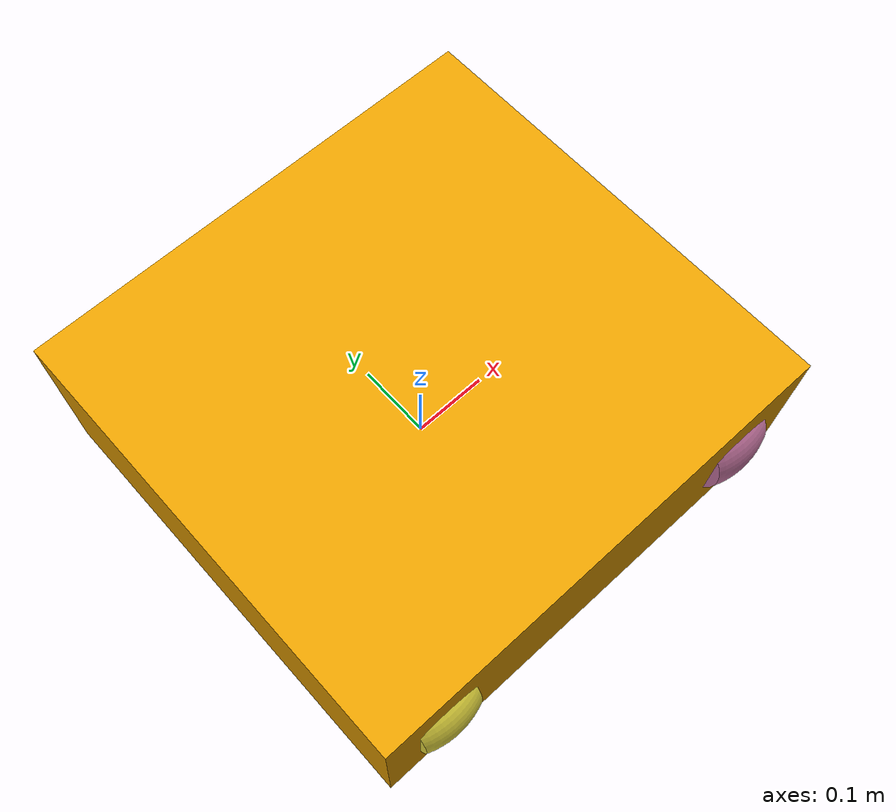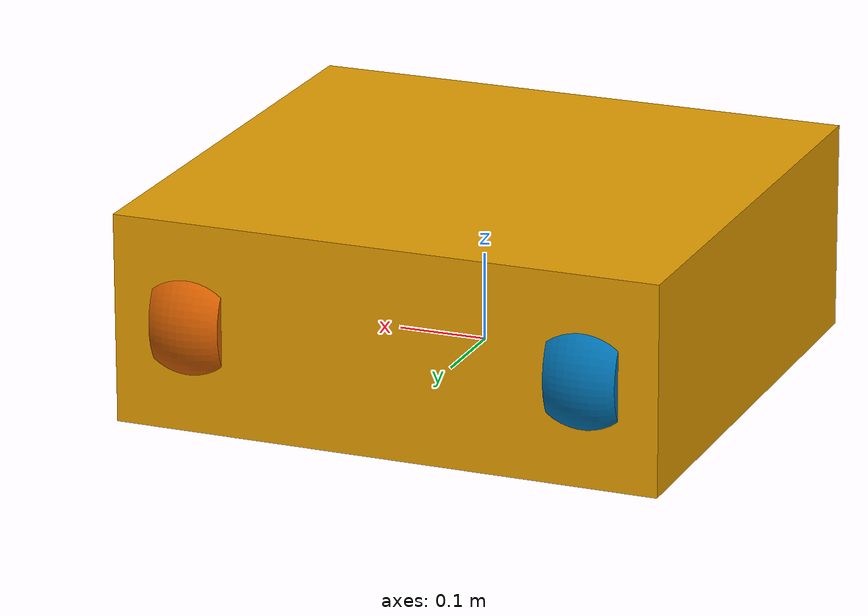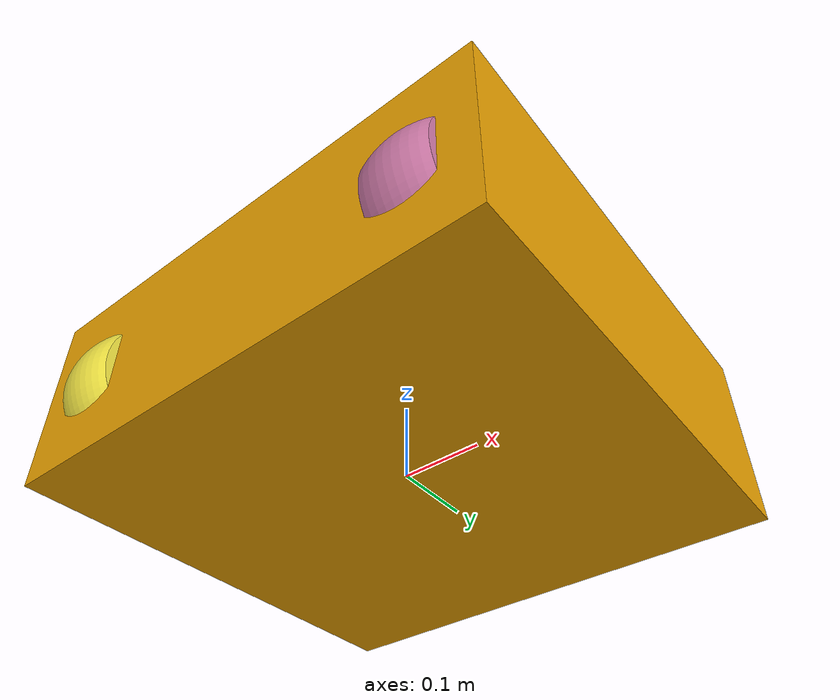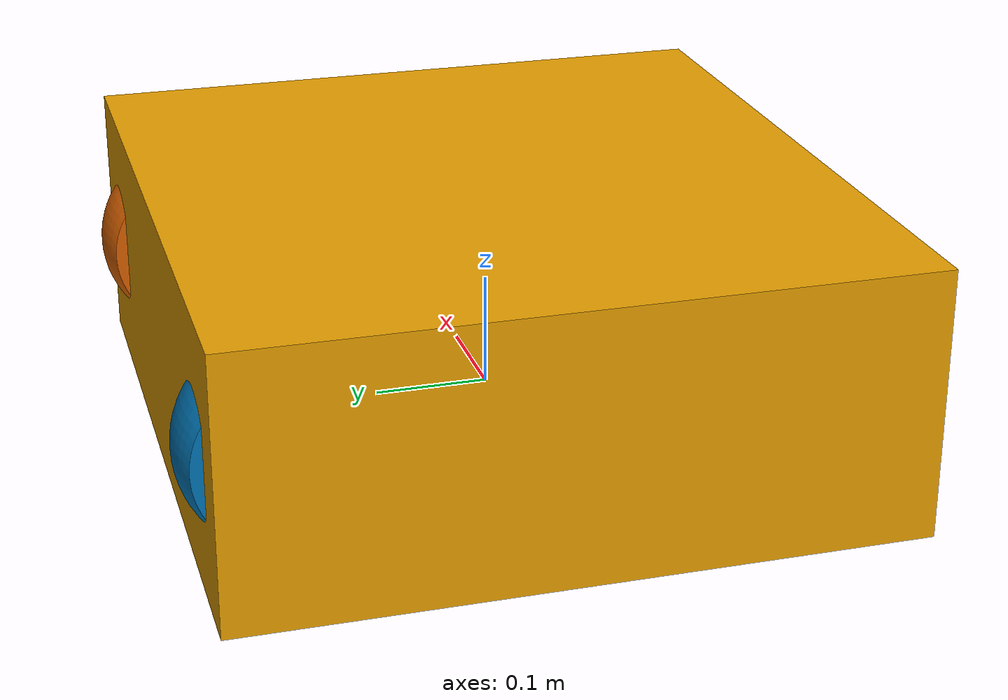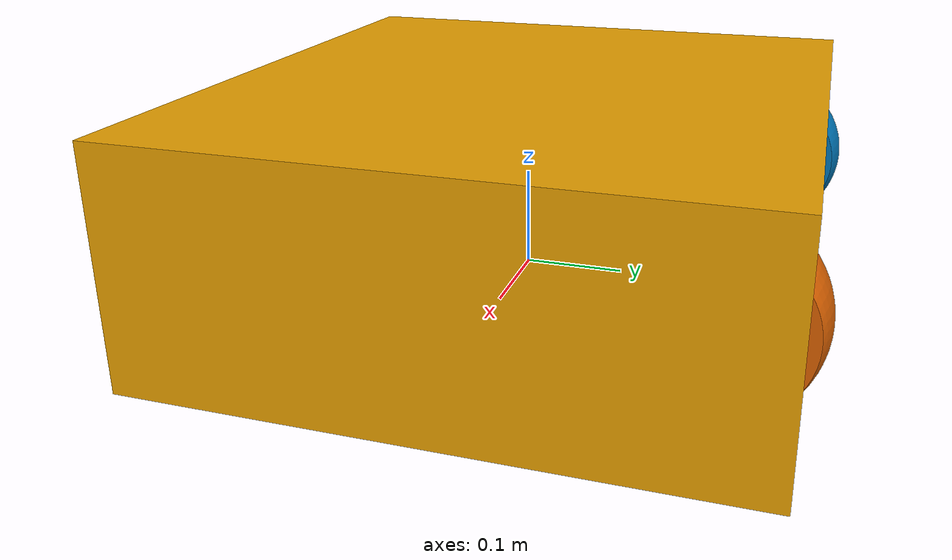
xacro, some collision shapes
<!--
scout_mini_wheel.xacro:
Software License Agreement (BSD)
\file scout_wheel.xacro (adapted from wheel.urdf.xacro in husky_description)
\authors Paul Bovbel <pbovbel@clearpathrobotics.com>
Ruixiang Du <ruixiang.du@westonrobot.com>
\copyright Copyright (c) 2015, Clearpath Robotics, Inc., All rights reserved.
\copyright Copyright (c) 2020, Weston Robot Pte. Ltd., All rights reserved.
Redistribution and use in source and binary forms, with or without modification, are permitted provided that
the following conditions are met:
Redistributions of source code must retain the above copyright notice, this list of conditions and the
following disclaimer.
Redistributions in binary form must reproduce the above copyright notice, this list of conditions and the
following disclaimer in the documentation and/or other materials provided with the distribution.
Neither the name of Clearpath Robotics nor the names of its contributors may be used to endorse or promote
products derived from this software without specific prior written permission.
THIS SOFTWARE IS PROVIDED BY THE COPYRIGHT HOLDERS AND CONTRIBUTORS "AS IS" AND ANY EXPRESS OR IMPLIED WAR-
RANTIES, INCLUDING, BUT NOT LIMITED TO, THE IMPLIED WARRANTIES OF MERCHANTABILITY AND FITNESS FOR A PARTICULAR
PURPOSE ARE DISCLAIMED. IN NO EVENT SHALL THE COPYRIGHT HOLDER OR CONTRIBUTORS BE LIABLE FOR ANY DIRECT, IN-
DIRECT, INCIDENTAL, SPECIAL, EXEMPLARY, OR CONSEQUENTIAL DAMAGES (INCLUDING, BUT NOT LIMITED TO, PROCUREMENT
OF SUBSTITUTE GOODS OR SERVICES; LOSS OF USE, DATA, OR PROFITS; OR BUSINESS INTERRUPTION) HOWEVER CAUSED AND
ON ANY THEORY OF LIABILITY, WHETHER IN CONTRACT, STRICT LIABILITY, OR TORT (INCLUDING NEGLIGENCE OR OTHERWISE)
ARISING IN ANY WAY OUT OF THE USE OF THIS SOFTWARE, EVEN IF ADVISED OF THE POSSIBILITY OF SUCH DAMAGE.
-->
<?xml version="1.0"?>

<robot name="scout_mini"
    xmlns:xacro="http://ros.org/wiki/xacro">

    <xacro:arg name="robot_namespace" default="/" />

    <xacro:include filename="$(find scout_description)/urdf/scout_mini_wheel.xacro" />

    <!-- Variables -->
    <xacro:property name="M_PI" value="3.14159" />

    <!-- Vehicle Geometries -->
    <xacro:property name="base_x_size" value="0.6200000" />
    <xacro:property name="base_y_size" value="0.585000" />
    <xacro:property name="base_z_size" value="0.235000" />

    <xacro:property name="wheelbase" value="0.38" />
    <xacro:property name="track" value="0.452598" />

    <xacro:property name="wheel_length" value="0.08" />
    <xacro:property name="wheel_radius" value="0.08" />

    <!-- Base link -->
    <link name="base_link">
        <visual>
            <origin xyz="0 0 ${wheel_radius}" rpy="0 0 0" />
            <geometry>
                <mesh filename="package://scout_description/meshes/scout_mini_base.obj" />
            </geometry>
        </visual>
        <collision>
            <origin xyz="0 0 ${wheel_radius}" rpy="0 0 0" />
            <geometry>
                <box size="${base_x_size} ${base_y_size} ${base_z_size}"/>
            </geometry>
        </collision>
    </link>

    <link name="base_footprint"/>

    <joint name="base_footprint_joint" type="fixed">
        <origin xyz="0 0 0" rpy="0 0 0" />
        <parent link="base_link" />
        <child link="base_footprint" />
    </joint>

    <link name="inertial_link">
        <inertial>
            <mass value="132.3898489950015" />
            <origin xyz="0 0 ${wheel_radius}" />
            <inertia ixx="0.185196122711036" ixy="4.30144213829512E-08" ixz="5.81037523686401E-08" iyy="0.364893736238929" iyz="-0.000386720198091934" izz="0.223868521722778" />
        </inertial>
    </link>

    <joint name="inertial_joint" type="fixed">
        <origin xyz="0 0 0" rpy="0 0 0" />
        <parent link="base_link" />
        <child link="inertial_link" />
    </joint>

    <!-- Scout wheel macros -->
    <!-- wheel labeled from 0 to 3, conter-clockwise, starting from front right wheel -->
    <!-- motor 1 and 2 (left side) are mechanically installed in a reversed direction -->
    <xacro:scout_mini_wheel wheel_prefix="rear_right">
        <origin xyz="${-wheelbase/2} ${-track/2} ${wheel_radius}" rpy="0 ${ M_PI/2} 0" />
    </xacro:scout_mini_wheel>
    <xacro:scout_mini_wheel wheel_prefix="front_right">
        <origin xyz="${-wheelbase/2} ${ track/2} ${wheel_radius}" rpy="0 ${ M_PI/2} 0" />
    </xacro:scout_mini_wheel>

    <xacro:scout_mini_wheel wheel_prefix="front_left">
        <origin xyz="${ wheelbase/2} ${ track/2} ${wheel_radius}" rpy="0 ${-M_PI/2} 0" />
    </xacro:scout_mini_wheel>
    <xacro:scout_mini_wheel wheel_prefix="rear_left">
        <origin xyz="${ wheelbase/2} ${-track/2} ${wheel_radius}" rpy="0 ${-M_PI/2} 0" />
    </xacro:scout_mini_wheel>
</robot>

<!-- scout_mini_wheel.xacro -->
<robot xmlns:xacro="http://ros.org/wiki/xacro" name="scout_wheel">

    <xacro:macro name="scout_mini_wheel" params="wheel_prefix *joint_pose">
        <link name="${wheel_prefix}_wheel_link">
            <inertial>
                <mass value="3" />
                <origin xyz="0 0 0" />
                <inertia ixx="0.7171" ixy="0" ixz="0" iyy="0.7171" iyz="0" izz="0.1361" />
            </inertial>
            <visual>
                <origin xyz="0 0 0" rpy="0 0 0" />
                <geometry>
                    <mesh filename="package://scout_description/meshes/wheel.obj" />
                </geometry>
            </visual>
            <collision>
              <origin xyz="0 0 0" rpy="0 0 0" />
              <geometry>
                <mesh
                  filename="package://scout_description/meshes/wheel.obj" />
              </geometry>
            </collision>
        </link>

        <joint name="${wheel_prefix}_wheel" type="fixed">
            <parent link="base_link"/>
            <child link="${wheel_prefix}_wheel_link"/>
            <xacro:insert_block name="joint_pose"/>
            <axis xyz="0 0 -1" rpy="0 0 0" />
        </joint>
    </xacro:macro>

</robot>
